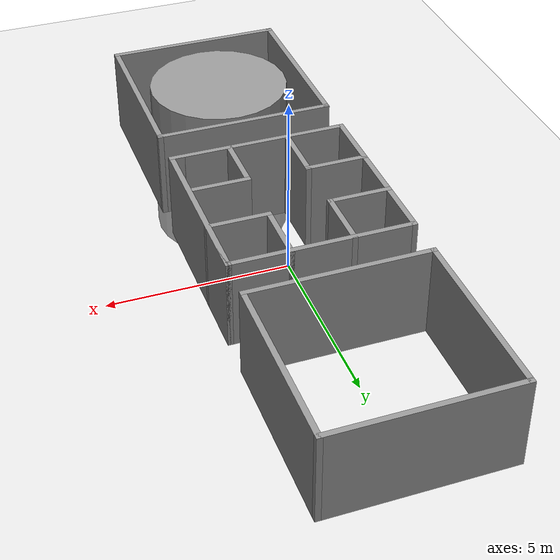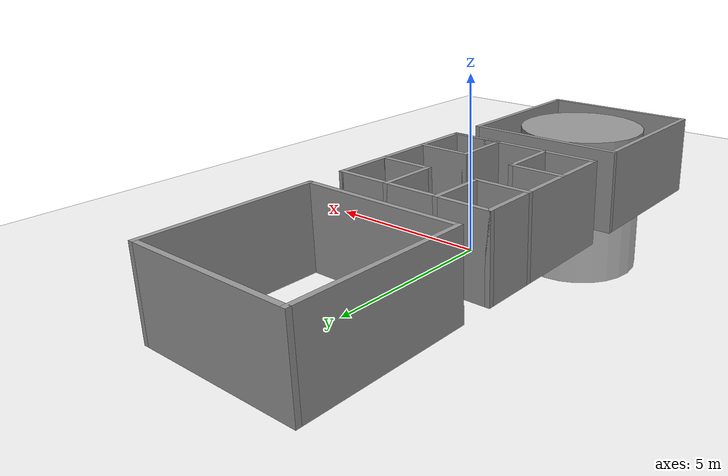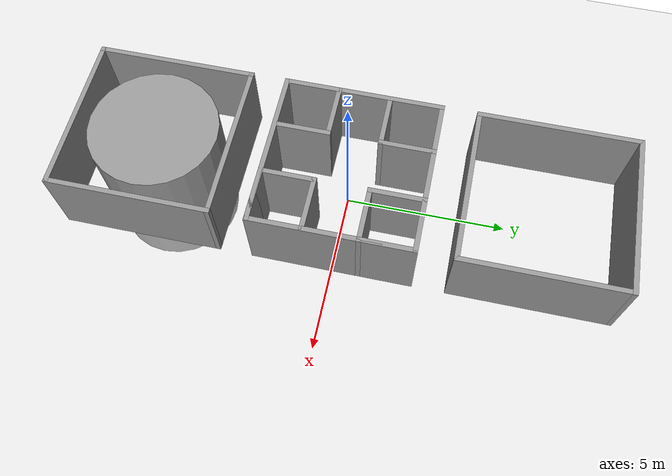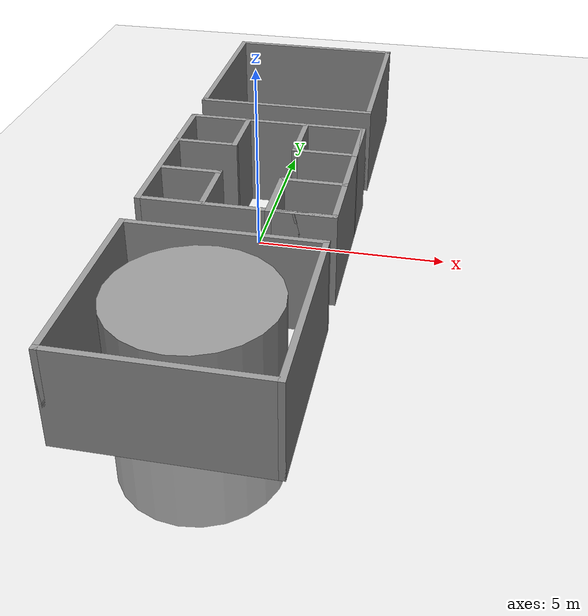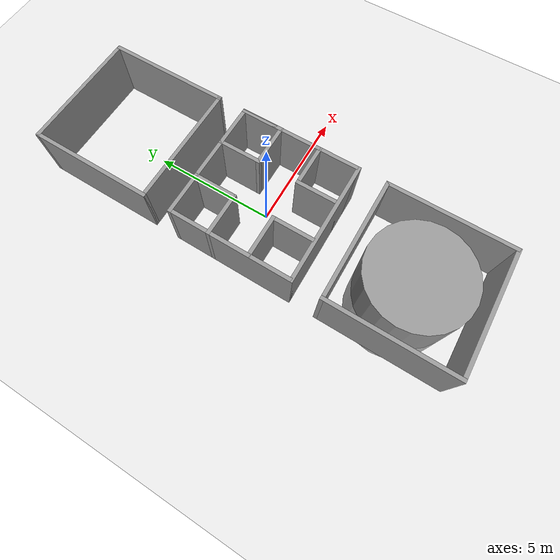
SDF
<sdf version="1.6">
 <world name="default">
  <light name="sun" type="directional">
   <pose>0 0 10 0 -0 0</pose>
   <diffuse>0.8 0.8 0.8 1</diffuse>
   <specular>0.2 0.2 0.2 1</specular>
   <attenuation>
    <range>1000</range>
    <constant>0.9</constant>
    <linear>0.01</linear>
    <quadratic>0.001</quadratic>
   </attenuation>
   <direction>-0.5 0.1 -0.9</direction>
  </light>
  <model name="ground_plane">
   <static>1</static>
   <link name="link">
    <collision name="collision">
     <geometry><plane><normal>0 0 1</normal><size>100 100</size></plane></geometry>
     <surface>
      <contact><collide_bitmask>65535</collide_bitmask></contact>
      <friction><ode><mu>100</mu><mu2>50</mu2></ode></friction>
     </surface>
    </collision>
    <visual name="visual">
     <cast_shadows>0</cast_shadows>
     <geometry><plane><normal>0 0 1</normal><size>100 100</size></plane></geometry>
     <material>
      <script><uri>file://media/materials/scripts/gazebo.material</uri><name>Gazebo/Grey</name></script>
     </material>
    </visual>
   </link>
  </model>
  <gravity>0 0 -9.8</gravity>
  <magnetic_field>6e-06 2.3e-05 -4.2e-05</magnetic_field>
  <atmosphere type="adiabatic"/>
  <physics name="default_physics" default="0" type="ode">
   <max_step_size>0.01</max_step_size>
   <real_time_factor>1</real_time_factor>
   <real_time_update_rate>100</real_time_update_rate>
  </physics>
  <scene><ambient>0.4 0.4 0.4 1</ambient><background>0.7 0.7 0.7 1</background><shadows>1</shadows></scene>
  <spherical_coordinates>
   <surface_model>EARTH_WGS84</surface_model>
   <latitude_deg>0</latitude_deg>
   <longitude_deg>0</longitude_deg>
   <elevation>0</elevation>
   <heading_deg>0</heading_deg>
  </spherical_coordinates>
  <model name="train_ma_02">
   <pose>0 6 0 0 -0 0</pose>
   <link name="Wall_0">
    <collision name="Wall_0_Collision">
     <geometry><box><size>5 0.15 2.5</size></box></geometry>
     <pose>0 0 1.25 0 -0 0</pose>
    </collision>
    <visual name="Wall_0_Visual">
     <pose>0 0 1.25 0 -0 0</pose>
     <geometry><box><size>5 0.15 2.5</size></box></geometry>
     <material>
      <script><uri>file://media/materials/scripts/gazebo.material</uri><name>Gazebo/Grey</name></script>
      <ambient>1 1 1 1</ambient>
     </material>
     <meta><layer>0</layer></meta>
    </visual>
    <pose>-2.425 0 0 0 0 -1.5708</pose>
   </link>
   <link name="Wall_1">
    <collision name="Wall_1_Collision">
     <geometry><box><size>5 0.15 2.5</size></box></geometry>
     <pose>0 0 1.25 0 -0 0</pose>
    </collision>
    <visual name="Wall_1_Visual">
     <pose>0 0 1.25 0 -0 0</pose>
     <geometry><box><size>5 0.15 2.5</size></box></geometry>
     <material>
      <script><uri>file://media/materials/scripts/gazebo.material</uri><name>Gazebo/Grey</name></script>
      <ambient>1 1 1 1</ambient>
     </material>
     <meta><layer>0</layer></meta>
    </visual>
    <pose>0 -2.425 0 0 -0 0</pose>
   </link>
   <link name="Wall_2">
    <collision name="Wall_2_Collision">
     <geometry><box><size>5 0.15 2.5</size></box></geometry>
     <pose>0 0 1.25 0 -0 0</pose>
    </collision>
    <visual name="Wall_2_Visual">
     <pose>0 0 1.25 0 -0 0</pose>
     <geometry><box><size>5 0.15 2.5</size></box></geometry>
     <material>
      <script><uri>file://media/materials/scripts/gazebo.material</uri><name>Gazebo/Grey</name></script>
      <ambient>1 1 1 1</ambient>
     </material>
     <meta><layer>0</layer></meta>
    </visual>
    <pose>2.425 0 0 0 -0 1.5708</pose>
   </link>
   <link name="Wall_3">
    <collision name="Wall_3_Collision">
     <geometry><box><size>5 0.15 2.5</size></box></geometry>
     <pose>0 0 1.25 0 -0 0</pose>
    </collision>
    <visual name="Wall_3_Visual">
     <pose>0 0 1.25 0 -0 0</pose>
     <geometry><box><size>5 0.15 2.5</size></box></geometry>
     <material>
      <script><uri>file://media/materials/scripts/gazebo.material</uri><name>Gazebo/Grey</name></script>
      <ambient>1 1 1 1</ambient>
     </material>
     <meta><layer>0</layer></meta>
    </visual>
    <pose>0 2.425 0 0 -0 3.14159</pose>
   </link>
   <static>1</static>
  </model>
  <model name="train_ma_03">
   <link name="Wall_15">
    <collision name="Wall_15_Collision">
     <geometry><box><size>1.75 0.15 2.5</size></box></geometry>
     <pose>0 0 1.25 0 -0 0</pose>
    </collision>
    <visual name="Wall_15_Visual">
     <pose>0 0 1.25 0 -0 0</pose>
     <geometry><box><size>1.75 0.15 2.5</size></box></geometry>
     <material>
      <script><uri>file://media/materials/scripts/gazebo.material</uri><name>Gazebo/Grey</name></script>
      <ambient>1 1 1 1</ambient>
     </material>
     <meta><layer>0</layer></meta>
    </visual>
    <pose>-0.825 1.625 0 0 0 -1.5708</pose>
   </link>
   <link name="Wall_21">
    <collision name="Wall_21_Collision">
     <geometry><box><size>1.75 0.15 2.5</size></box></geometry>
     <pose>0 0 1.25 0 -0 0</pose>
    </collision>
    <visual name="Wall_21_Visual">
     <pose>0 0 1.25 0 -0 0</pose>
     <geometry><box><size>1.75 0.15 2.5</size></box></geometry>
     <material>
      <script><uri>file://media/materials/scripts/gazebo.material</uri><name>Gazebo/Grey</name></script>
      <ambient>1 1 1 1</ambient>
     </material>
     <meta><layer>0</layer></meta>
    </visual>
    <pose>-1.625 0.825 0 0 -0 3.14159</pose>
   </link>
   <link name="Wall_23">
    <collision name="Wall_23_Collision">
     <geometry><box><size>5 0.15 2.5</size></box></geometry>
     <pose>0 0 1.25 0 -0 0</pose>
    </collision>
    <visual name="Wall_23_Visual">
     <pose>0 0 1.25 0 -0 0</pose>
     <geometry><box><size>5 0.15 2.5</size></box></geometry>
     <material>
      <script><uri>file://media/materials/scripts/gazebo.material</uri><name>Gazebo/Grey</name></script>
      <ambient>1 1 1 1</ambient>
     </material>
     <meta><layer>0</layer></meta>
    </visual>
    <pose>0 2.425 0 0 -0 0</pose>
   </link>
   <link name="Wall_26">
    <collision name="Wall_26_Collision">
     <geometry><box><size>1.75 0.15 2.5</size></box></geometry>
     <pose>0 0 1.25 0 -0 0</pose>
    </collision>
    <visual name="Wall_26_Visual">
     <pose>0 0 1.25 0 -0 0</pose>
     <geometry><box><size>1.75 0.15 2.5</size></box></geometry>
     <material>
      <script><uri>file://media/materials/scripts/gazebo.material</uri><name>Gazebo/Grey</name></script>
      <ambient>1 1 1 1</ambient>
     </material>
     <meta><layer>0</layer></meta>
    </visual>
    <pose>-0.825 -1.575 0 0 0 -1.5708</pose>
   </link>
   <link name="Wall_32">
    <collision name="Wall_32_Collision">
     <geometry><box><size>1.75 0.15 2.5</size></box></geometry>
     <pose>0 0 1.25 0 -0 0</pose>
    </collision>
    <visual name="Wall_32_Visual">
     <pose>0 0 1.25 0 -0 0</pose>
     <geometry><box><size>1.75 0.15 2.5</size></box></geometry>
     <material>
      <script><uri>file://media/materials/scripts/gazebo.material</uri><name>Gazebo/Grey</name></script>
      <ambient>1 1 1 1</ambient>
     </material>
     <meta><layer>0</layer></meta>
    </visual>
    <pose>-1.625 -0.775 0 0 -0 3.14159</pose>
   </link>
   <link name="Wall_34">
    <collision name="Wall_34_Collision">
     <geometry><box><size>1.75 0.15 2.5</size></box></geometry>
     <pose>0 0 1.25 0 -0 0</pose>
    </collision>
    <visual name="Wall_34_Visual">
     <pose>0 0 1.25 0 -0 0</pose>
     <geometry><box><size>1.75 0.15 2.5</size></box></geometry>
     <material>
      <script><uri>file://media/materials/scripts/gazebo.material</uri><name>Gazebo/Grey</name></script>
      <ambient>1 1 1 1</ambient>
     </material>
     <meta><layer>0</layer></meta>
    </visual>
    <pose>1.625 -2.425 0 0 -0 3.14159</pose>
   </link>
   <link name="Wall_35">
    <collision name="Wall_35_Collision">
     <geometry><box><size>1.75 0.15 2.5</size></box></geometry>
     <pose>0 0 1.25 0 -0 0</pose>
    </collision>
    <visual name="Wall_35_Visual">
     <pose>0 0 1.25 0 -0 0</pose>
     <geometry><box><size>1.75 0.15 2.5</size></box></geometry>
     <material>
      <script><uri>file://media/materials/scripts/gazebo.material</uri><name>Gazebo/Grey</name></script>
      <ambient>1 1 1 1</ambient>
     </material>
     <meta><layer>0</layer></meta>
    </visual>
    <pose>0.825 -1.625 0 0 -0 1.5708</pose>
   </link>
   <link name="Wall_36">
    <collision name="Wall_36_Collision">
     <geometry><box><size>1.75 0.15 2.5</size></box></geometry>
     <pose>0 0 1.25 0 -0 0</pose>
    </collision>
    <visual name="Wall_36_Visual">
     <pose>0 0 1.25 0 -0 0</pose>
     <geometry><box><size>1.75 0.15 2.5</size></box></geometry>
     <material>
      <script><uri>file://media/materials/scripts/gazebo.material</uri><name>Gazebo/Grey</name></script>
      <ambient>1 1 1 1</ambient>
     </material>
     <meta><layer>0</layer></meta>
    </visual>
    <pose>1.625 -0.825 0 0 -0 0</pose>
   </link>
   <link name="Wall_38">
    <collision name="Wall_38_Collision">
     <geometry><box><size>1.75 0.15 2.5</size></box></geometry>
     <pose>0 0 1.25 0 -0 0</pose>
    </collision>
    <visual name="Wall_38_Visual">
     <pose>0 0 1.25 0 -0 0</pose>
     <geometry><box><size>1.75 0.15 2.5</size></box></geometry>
     <material>
      <script><uri>file://media/materials/scripts/gazebo.material</uri><name>Gazebo/Grey</name></script>
      <ambient>1 1 1 1</ambient>
     </material>
     <meta><layer>0</layer></meta>
    </visual>
    <pose>2.425 1.625 0 0 0 -1.5708</pose>
   </link>
   <link name="Wall_39">
    <collision name="Wall_39_Collision">
     <geometry><box><size>1.75 0.15 2.5</size></box></geometry>
     <pose>0 0 1.25 0 -0 0</pose>
    </collision>
    <visual name="Wall_39_Visual">
     <pose>0 0 1.25 0 -0 0</pose>
     <geometry><box><size>1.75 0.15 2.5</size></box></geometry>
     <material>
      <script><uri>file://media/materials/scripts/gazebo.material</uri><name>Gazebo/Grey</name></script>
      <ambient>1 1 1 1</ambient>
     </material>
     <meta><layer>0</layer></meta>
    </visual>
    <pose>1.625 0.825 0 0 -0 3.14159</pose>
   </link>
   <link name="Wall_40">
    <collision name="Wall_40_Collision">
     <geometry><box><size>1.75 0.15 2.5</size></box></geometry>
     <pose>0 0 1.25 0 -0 0</pose>
    </collision>
    <visual name="Wall_40_Visual">
     <pose>0 0 1.25 0 -0 0</pose>
     <geometry><box><size>1.75 0.15 2.5</size></box></geometry>
     <material>
      <script><uri>file://media/materials/scripts/gazebo.material</uri><name>Gazebo/Grey</name></script>
      <ambient>1 1 1 1</ambient>
     </material>
     <meta><layer>0</layer></meta>
    </visual>
    <pose>0.825 1.625 0 0 -0 1.5708</pose>
   </link>
   <link name="Wall_5">
    <collision name="Wall_5_Collision">
     <geometry><box><size>5 0.15 2.5</size></box></geometry>
     <pose>0 0 1.25 0 -0 0</pose>
    </collision>
    <visual name="Wall_5_Visual">
     <pose>0 0 1.25 0 -0 0</pose>
     <geometry><box><size>5 0.15 2.5</size></box></geometry>
     <material>
      <script><uri>file://media/materials/scripts/gazebo.material</uri><name>Gazebo/Grey</name></script>
      <ambient>1 1 1 1</ambient>
     </material>
     <meta><layer>0</layer></meta>
    </visual>
    <pose>-2.425 0 0 0 0 -1.5708</pose>
   </link>
   <link name="Wall_6">
    <collision name="Wall_6_Collision">
     <geometry><box><size>5 0.15 2.5</size></box></geometry>
     <pose>0 0 1.25 0 -0 0</pose>
    </collision>
    <visual name="Wall_6_Visual">
     <pose>0 0 1.25 0 -0 0</pose>
     <geometry><box><size>5 0.15 2.5</size></box></geometry>
     <material>
      <script><uri>file://media/materials/scripts/gazebo.material</uri><name>Gazebo/Grey</name></script>
      <ambient>1 1 1 1</ambient>
     </material>
     <meta><layer>0</layer></meta>
    </visual>
    <pose>0 -2.425 0 0 -0 0</pose>
   </link>
   <link name="Wall_7">
    <collision name="Wall_7_Collision">
     <geometry><box><size>5 0.15 2.5</size></box></geometry>
     <pose>0 0 1.25 0 -0 0</pose>
    </collision>
    <visual name="Wall_7_Visual">
     <pose>0 0 1.25 0 -0 0</pose>
     <geometry><box><size>5 0.15 2.5</size></box></geometry>
     <material>
      <script><uri>file://media/materials/scripts/gazebo.material</uri><name>Gazebo/Grey</name></script>
      <ambient>1 1 1 1</ambient>
     </material>
     <meta><layer>0</layer></meta>
    </visual>
    <pose>2.425 0 0 0 -0 1.5708</pose>
   </link>
   <static>1</static>
  </model>
  <model name="train_ma_02_0">
   <pose>0 -6 0 0 -0 0</pose>
   <link name="Wall_0">
    <collision name="Wall_0_Collision">
     <geometry><box><size>5 0.15 2.5</size></box></geometry>
     <pose>0 0 1.25 0 -0 0</pose>
    </collision>
    <visual name="Wall_0_Visual">
     <pose>0 0 1.25 0 -0 0</pose>
     <geometry><box><size>5 0.15 2.5</size></box></geometry>
     <material>
      <script><uri>file://media/materials/scripts/gazebo.material</uri><name>Gazebo/Grey</name></script>
      <ambient>1 1 1 1</ambient>
     </material>
     <meta><layer>0</layer></meta>
    </visual>
    <pose>-2.425 0 0 0 0 -1.5708</pose>
   </link>
   <link name="Wall_1">
    <collision name="Wall_1_Collision">
     <geometry><box><size>5 0.15 2.5</size></box></geometry>
     <pose>0 0 1.25 0 -0 0</pose>
    </collision>
    <visual name="Wall_1_Visual">
     <pose>0 0 1.25 0 -0 0</pose>
     <geometry><box><size>5 0.15 2.5</size></box></geometry>
     <material>
      <script><uri>file://media/materials/scripts/gazebo.material</uri><name>Gazebo/Grey</name></script>
      <ambient>1 1 1 1</ambient>
     </material>
     <meta><layer>0</layer></meta>
    </visual>
    <pose>0 -2.425 0 0 -0 0</pose>
   </link>
   <link name="Wall_2">
    <collision name="Wall_2_Collision">
     <geometry><box><size>5 0.15 2.5</size></box></geometry>
     <pose>0 0 1.25 0 -0 0</pose>
    </collision>
    <visual name="Wall_2_Visual">
     <pose>0 0 1.25 0 -0 0</pose>
     <geometry><box><size>5 0.15 2.5</size></box></geometry>
     <material>
      <script><uri>file://media/materials/scripts/gazebo.material</uri><name>Gazebo/Grey</name></script>
      <ambient>1 1 1 1</ambient>
     </material>
     <meta><layer>0</layer></meta>
    </visual>
    <pose>2.425 0 0 0 -0 1.5708</pose>
   </link>
   <link name="Wall_3">
    <collision name="Wall_3_Collision">
     <geometry><box><size>5 0.15 2.5</size></box></geometry>
     <pose>0 0 1.25 0 -0 0</pose>
    </collision>
    <visual name="Wall_3_Visual">
     <pose>0 0 1.25 0 -0 0</pose>
     <geometry><box><size>5 0.15 2.5</size></box></geometry>
     <material>
      <script><uri>file://media/materials/scripts/gazebo.material</uri><name>Gazebo/Grey</name></script>
      <ambient>1 1 1 1</ambient>
     </material>
     <meta><layer>0</layer></meta>
    </visual>
    <pose>0 2.425 0 0 -0 3.14159</pose>
   </link>
   <static>1</static>
  </model>
  <model name="static_cylinder">
   <link name="link">
    <inertial>
     <mass>1</mass>
     <inertia><ixx>0.145833</ixx><ixy>0</ixy><ixz>0</ixz><iyy>0.145833</iyy><iyz>0</iyz><izz>0.125</izz></inertia>
    </inertial>
    <visual name="visual">
     <geometry><cylinder><radius>1.99916</radius><length>4.71244</length></cylinder></geometry>
     <material>
      <script><name>Gazebo/Grey</name><uri>file://media/materials/scripts/gazebo.material</uri></script>
      <shader type="pixel"/>
      <ambient>0.3 0.3 0.3 1</ambient>
      <diffuse>0.7 0.7 0.7 1</diffuse>
      <specular>0.01 0.01 0.01 1</specular>
      <emissive>0 0 0 1</emissive>
     </material>
    </visual>
    <collision name="collision">
     <geometry><cylinder><radius>1.99916</radius><length>4.71244</length></cylinder></geometry>
     <surface>
      <friction>
       <ode><mu>1</mu><mu2>1</mu2><fdir1>0 0 0</fdir1><slip1>0</slip1><slip2>0</slip2></ode>
       <torsional>
        <coefficient>1</coefficient>
        <patch_radius>0</patch_radius>
        <surface_radius>0</surface_radius>
        <use_patch_radius>1</use_patch_radius>
        <ode><slip>0</slip></ode>
       </torsional>
      </friction>
      <bounce><restitution_coefficient>0</restitution_coefficient><threshold>1e+06</threshold></bounce>
      <contact>
       <collide_without_contact>0</collide_without_contact>
       <collide_without_contact_bitmask>1</collide_without_contact_bitmask>
       <collide_bitmask>1</collide_bitmask>
       <ode>
        <soft_cfm>0</soft_cfm>
        <soft_erp>0.2</soft_erp>
        <kp>1e+13</kp>
        <kd>1</kd>
        <max_vel>0.01</max_vel>
        <min_depth>0</min_depth>
       </ode>
       <bullet>
        <split_impulse>1</split_impulse>
        <split_impulse_penetration_threshold>-0.01</split_impulse_penetration_threshold>
        <soft_cfm>0</soft_cfm>
        <soft_erp>0.2</soft_erp>
        <kp>1e+13</kp>
        <kd>1</kd>
       </bullet>
      </contact>
     </surface>
    </collision>
   </link>
   <static>1</static>
   <pose>0 -6 0 0 -0 0</pose>
  </model>
 </world>
</sdf>
